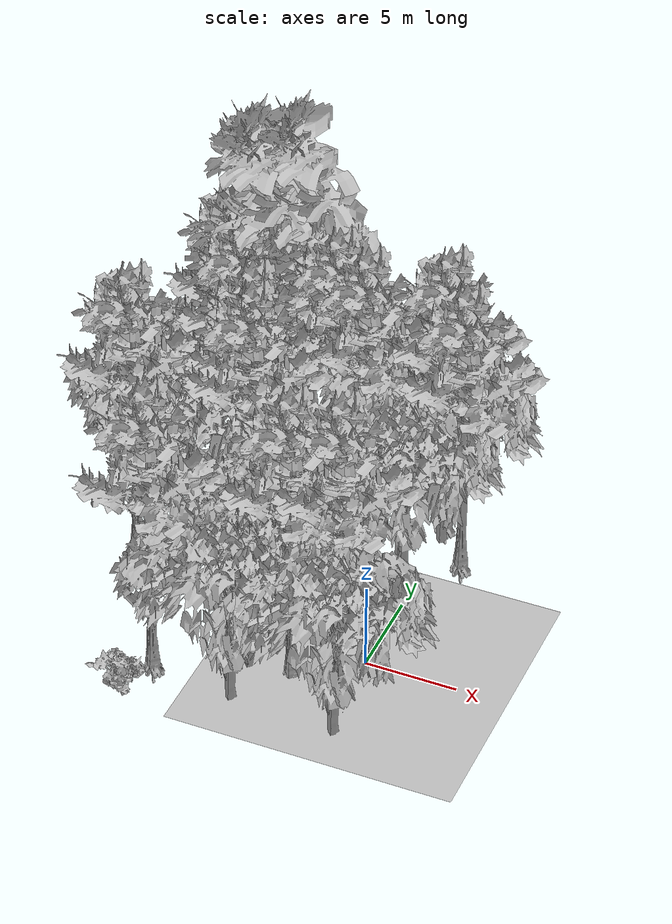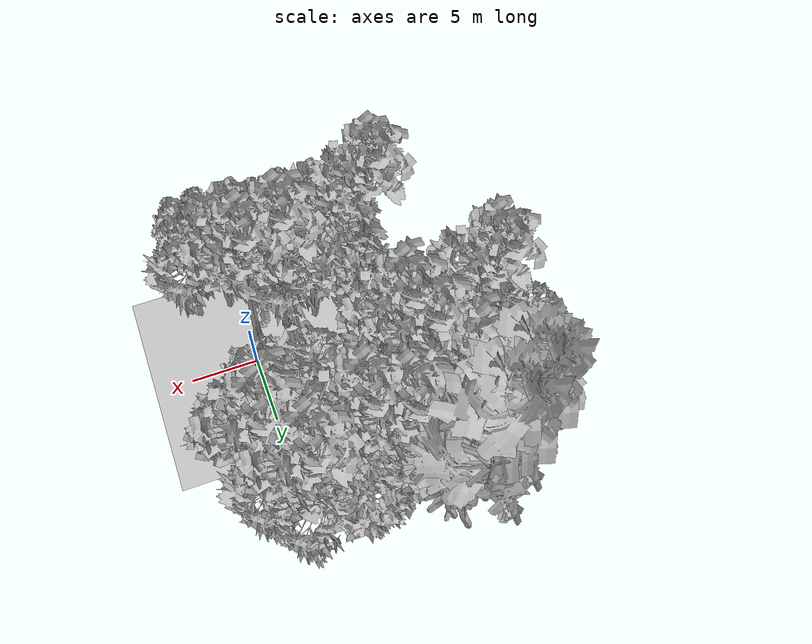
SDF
<sdf version="1.7">
 <world name="default">
  <model name="ground_plane">
   <static>1</static>
   <link name="link">
    <collision name="collision">
     <geometry><plane><normal>0 0 1</normal><size>70 70</size></plane></geometry>
     <surface><contact><ode><min_depth>0.01</min_depth><max_vel>0</max_vel></ode></contact></surface>
    </collision>
    <visual name="grass">
     <cast_shadows>0</cast_shadows>
     <geometry>
      <mesh>
       <scale>0.29000000000000004 0.29000000000000004 0.1</scale>
       <uri>file://grass_plane/meshes/grass_plane.dae</uri>
      </mesh>
     </geometry>
    </visual>
   </link>
  </model>
  <model name="Tree 7">
   <static>1</static>
   <pose>-9.887393055710618 14.658670685171025 0 1.57079 -0 0</pose>
   <link name="link">
    <collision name="collision">
     <geometry><mesh><scale>5 5 5</scale><uri>model://tree_4/meshes/tree_4.obj</uri></mesh></geometry>
    </collision>
    <visual name="visual">
     <geometry><mesh><scale>5 5 5</scale><uri>model://tree_4/meshes/tree_4.obj</uri></mesh></geometry>
    </visual>
   </link>
  </model>
  <model name="Tree 23">
   <static>1</static>
   <pose>-10.006361388430044 -4.478906828208441 0 1.57079 -0 0</pose>
   <link name="link">
    <collision name="collision">
     <geometry><mesh><scale>5 5 5</scale><uri>model://tree_9/meshes/tree_9.obj</uri></mesh></geometry>
    </collision>
    <visual name="visual">
     <geometry><mesh><scale>5 5 5</scale><uri>model://tree_9/meshes/tree_9.obj</uri></mesh></geometry>
    </visual>
   </link>
  </model>
  <model name="Tree 42">
   <static>1</static>
   <pose>-9.30767338521564 6.881466201906882 0 1.57079 -0 0</pose>
   <link name="link">
    <collision name="collision">
     <geometry><mesh><scale>5 5 5</scale><uri>model://tree_9/meshes/tree_9.obj</uri></mesh></geometry>
    </collision>
    <visual name="visual">
     <geometry><mesh><scale>5 5 5</scale><uri>model://tree_9/meshes/tree_9.obj</uri></mesh></geometry>
    </visual>
   </link>
  </model>
  <model name="Tree 52">
   <static>1</static>
   <pose>1.5987458219797048 9.2771937078384 0 1.57079 -0 0</pose>
   <link name="link">
    <collision name="collision">
     <geometry><mesh><scale>5 5 5</scale><uri>model://tree_9/meshes/tree_9.obj</uri></mesh></geometry>
    </collision>
    <visual name="visual">
     <geometry><mesh><scale>5 5 5</scale><uri>model://tree_9/meshes/tree_9.obj</uri></mesh></geometry>
    </visual>
   </link>
  </model>
  <model name="Tree 57">
   <static>1</static>
   <pose>-5.625844707846962 -2.4422319020499117 0 1.57079 -0 0</pose>
   <link name="link">
    <collision name="collision">
     <geometry><mesh><scale>5 5 5</scale><uri>model://tree_2/meshes/tree_2.obj</uri></mesh></geometry>
    </collision>
    <visual name="visual">
     <geometry><mesh><scale>5 5 5</scale><uri>model://tree_2/meshes/tree_2.obj</uri></mesh></geometry>
    </visual>
   </link>
  </model>
  <model name="Tree 58">
   <static>1</static>
   <pose>-0.27144623589579453 10.844339724185978 0 1.57079 -0 0</pose>
   <link name="link">
    <collision name="collision">
     <geometry><mesh><scale>5 5 5</scale><uri>model://tree_2/meshes/tree_2.obj</uri></mesh></geometry>
    </collision>
    <visual name="visual">
     <geometry><mesh><scale>5 5 5</scale><uri>model://tree_2/meshes/tree_2.obj</uri></mesh></geometry>
    </visual>
   </link>
  </model>
  <model name="Tree 78">
   <static>1</static>
   <pose>-0.3887464680318118 12.021683993371092 0 1.57079 -0 0</pose>
   <link name="link">
    <collision name="collision">
     <geometry><mesh><scale>5 5 5</scale><uri>model://tree_9/meshes/tree_9.obj</uri></mesh></geometry>
    </collision>
    <visual name="visual">
     <geometry><mesh><scale>5 5 5</scale><uri>model://tree_9/meshes/tree_9.obj</uri></mesh></geometry>
    </visual>
   </link>
  </model>
  <model name="Tree 79">
   <static>1</static>
   <pose>-5.473502184002218 -5.13792144022084 0 1.57079 -0 0</pose>
   <link name="link">
    <collision name="collision">
     <geometry><mesh><scale>5 5 5</scale><uri>model://tree_2/meshes/tree_2.obj</uri></mesh></geometry>
    </collision>
    <visual name="visual">
     <geometry><mesh><scale>5 5 5</scale><uri>model://tree_2/meshes/tree_2.obj</uri></mesh></geometry>
    </visual>
   </link>
  </model>
  <model name="Tree 80">
   <static>1</static>
   <pose>-11.781049813239552 13.334174932168771 0 1.57079 -0 0</pose>
   <link name="link">
    <collision name="collision">
     <geometry><mesh><scale>5 5 5</scale><uri>model://tree_4/meshes/tree_4.obj</uri></mesh></geometry>
    </collision>
    <visual name="visual">
     <geometry><mesh><scale>5 5 5</scale><uri>model://tree_4/meshes/tree_4.obj</uri></mesh></geometry>
    </visual>
   </link>
  </model>
  <model name="Tree 144">
   <static>1</static>
   <pose>-2.131887502933129 12.946472649146209 0 1.57079 -0 0</pose>
   <link name="link">
    <collision name="collision">
     <geometry><mesh><scale>5 5 5</scale><uri>model://tree_2/meshes/tree_2.obj</uri></mesh></geometry>
    </collision>
    <visual name="visual">
     <geometry><mesh><scale>5 5 5</scale><uri>model://tree_2/meshes/tree_2.obj</uri></mesh></geometry>
    </visual>
   </link>
  </model>
  <model name="Tree 152">
   <static>1</static>
   <pose>-14.67042618502676 8.089378053699747 0 1.57079 -0 0</pose>
   <link name="link">
    <collision name="collision">
     <geometry><mesh><scale>5 5 5</scale><uri>model://tree_2/meshes/tree_2.obj</uri></mesh></geometry>
    </collision>
    <visual name="visual">
     <geometry><mesh><scale>5 5 5</scale><uri>model://tree_2/meshes/tree_2.obj</uri></mesh></geometry>
    </visual>
   </link>
  </model>
  <model name="Tree 155">
   <static>1</static>
   <pose>-8.572450674205527 5.162049316400633 0 1.57079 -0 0</pose>
   <link name="link">
    <collision name="collision">
     <geometry><mesh><scale>5 5 5</scale><uri>model://tree_9/meshes/tree_9.obj</uri></mesh></geometry>
    </collision>
    <visual name="visual">
     <geometry><mesh><scale>5 5 5</scale><uri>model://tree_9/meshes/tree_9.obj</uri></mesh></geometry>
    </visual>
   </link>
  </model>
  <model name="Tree 157">
   <static>1</static>
   <pose>-0.6896306640671668 -1.612994610036509 0 1.57079 -0 0</pose>
   <link name="link">
    <collision name="collision">
     <geometry><mesh><scale>5 5 5</scale><uri>model://tree_9/meshes/tree_9.obj</uri></mesh></geometry>
    </collision>
    <visual name="visual">
     <geometry><mesh><scale>5 5 5</scale><uri>model://tree_9/meshes/tree_9.obj</uri></mesh></geometry>
    </visual>
   </link>
  </model>
  <model name="Tree 164">
   <static>1</static>
   <pose>-0.9858027306029982 7.020946267443506 0 1.57079 -0 0</pose>
   <link name="link">
    <collision name="collision">
     <geometry><mesh><scale>5 5 5</scale><uri>model://tree_2/meshes/tree_2.obj</uri></mesh></geometry>
    </collision>
    <visual name="visual">
     <geometry><mesh><scale>5 5 5</scale><uri>model://tree_2/meshes/tree_2.obj</uri></mesh></geometry>
    </visual>
   </link>
  </model>
  <model name="Tree 167">
   <static>1</static>
   <pose>-4.274373461721087 10.282518293844994 0 1.57079 -0 0</pose>
   <link name="link">
    <collision name="collision">
     <geometry><mesh><scale>5 5 5</scale><uri>model://tree_9/meshes/tree_9.obj</uri></mesh></geometry>
    </collision>
    <visual name="visual">
     <geometry><mesh><scale>5 5 5</scale><uri>model://tree_9/meshes/tree_9.obj</uri></mesh></geometry>
    </visual>
   </link>
  </model>
  <model name="Tree 171">
   <static>1</static>
   <pose>-11.342449695837733 10.224324605597928 0 1.57079 -0 0</pose>
   <link name="link">
    <collision name="collision">
     <geometry><mesh><scale>5 5 5</scale><uri>model://tree_9/meshes/tree_9.obj</uri></mesh></geometry>
    </collision>
    <visual name="visual">
     <geometry><mesh><scale>5 5 5</scale><uri>model://tree_9/meshes/tree_9.obj</uri></mesh></geometry>
    </visual>
   </link>
  </model>
  <model name="Tree 188">
   <static>1</static>
   <pose>0.352700688756336 -5.470623270396558 0 1.57079 -0 0</pose>
   <link name="link">
    <collision name="collision">
     <geometry><mesh><scale>5 5 5</scale><uri>model://tree_2/meshes/tree_2.obj</uri></mesh></geometry>
    </collision>
    <visual name="visual">
     <geometry><mesh><scale>5 5 5</scale><uri>model://tree_2/meshes/tree_2.obj</uri></mesh></geometry>
    </visual>
   </link>
  </model>
  <model name="Tree 199">
   <static>1</static>
   <pose>-15.011953042723118 4.13445148524805 0 1.57079 -0 0</pose>
   <link name="link">
    <collision name="collision">
     <geometry><mesh><scale>5 5 5</scale><uri>model://tree_9/meshes/tree_9.obj</uri></mesh></geometry>
    </collision>
    <visual name="visual">
     <geometry><mesh><scale>5 5 5</scale><uri>model://tree_9/meshes/tree_9.obj</uri></mesh></geometry>
    </visual>
   </link>
  </model>
  <model name="Tree 201">
   <static>1</static>
   <pose>-3.181638402064653 -2.2592404118977925 0 1.57079 -0 0</pose>
   <link name="link">
    <collision name="collision">
     <geometry><mesh><scale>5 5 5</scale><uri>model://tree_9/meshes/tree_9.obj</uri></mesh></geometry>
    </collision>
    <visual name="visual">
     <geometry><mesh><scale>5 5 5</scale><uri>model://tree_9/meshes/tree_9.obj</uri></mesh></geometry>
    </visual>
   </link>
  </model>
  <model name="Tree 204">
   <static>1</static>
   <pose>-6.330038506299541 11.326311597176193 0 1.57079 -0 0</pose>
   <link name="link">
    <collision name="collision">
     <geometry><mesh><scale>5 5 5</scale><uri>model://tree_9/meshes/tree_9.obj</uri></mesh></geometry>
    </collision>
    <visual name="visual">
     <geometry><mesh><scale>5 5 5</scale><uri>model://tree_9/meshes/tree_9.obj</uri></mesh></geometry>
    </visual>
   </link>
  </model>
  <model name="Tree 214">
   <static>1</static>
   <pose>-13.110216066586204 12.87402645186846 0 1.57079 -0 0</pose>
   <link name="link">
    <collision name="collision">
     <geometry><mesh><scale>5 5 5</scale><uri>model://tree_9/meshes/tree_9.obj</uri></mesh></geometry>
    </collision>
    <visual name="visual">
     <geometry><mesh><scale>5 5 5</scale><uri>model://tree_9/meshes/tree_9.obj</uri></mesh></geometry>
    </visual>
   </link>
  </model>
  <model name="Tree 236">
   <static>1</static>
   <pose>-12.840084711058108 6.314281136299115 0 1.57079 -0 0</pose>
   <link name="link">
    <collision name="collision">
     <geometry><mesh><scale>5 5 5</scale><uri>model://tree_2/meshes/tree_2.obj</uri></mesh></geometry>
    </collision>
    <visual name="visual">
     <geometry><mesh><scale>5 5 5</scale><uri>model://tree_2/meshes/tree_2.obj</uri></mesh></geometry>
    </visual>
   </link>
  </model>
  <model name="Bush 26">
   <static>1</static>
   <pose>-1.3731205477902506 5.7753069668379595 0 1.57079 -0 0</pose>
   <link name="link">
    <collision name="collision">
     <geometry><mesh><scale>2 2 2</scale><uri>model://bush_2/meshes/bush_2.obj</uri></mesh></geometry>
    </collision>
    <visual name="visual">
     <geometry><mesh><scale>5 5 5</scale><uri>model://bush_2/meshes/bush_2.obj</uri></mesh></geometry>
    </visual>
   </link>
  </model>
  <model name="Bush 29">
   <static>1</static>
   <pose>-11.448834625829232 -5.850804539327164 0 1.57079 -0 0</pose>
   <link name="link">
    <collision name="collision">
     <geometry><mesh><scale>2 2 2</scale><uri>model://bush_2/meshes/bush_2.obj</uri></mesh></geometry>
    </collision>
    <visual name="visual">
     <geometry><mesh><scale>5 5 5</scale><uri>model://bush_2/meshes/bush_2.obj</uri></mesh></geometry>
    </visual>
   </link>
  </model>
  <model name="Bush 41">
   <static>1</static>
   <pose>-6.932708340369317 12.44367033452783 0 1.57079 -0 0</pose>
   <link name="link">
    <collision name="collision">
     <geometry><mesh><scale>2 2 2</scale><uri>model://bush_1/meshes/bush_1.obj</uri></mesh></geometry>
    </collision>
    <visual name="visual">
     <geometry><mesh><scale>5 5 5</scale><uri>model://bush_1/meshes/bush_1.obj</uri></mesh></geometry>
    </visual>
   </link>
  </model>
  <model name="Bush 55">
   <static>1</static>
   <pose>-5.210041305748252 2.993762446535115 0 1.57079 -0 0</pose>
   <link name="link">
    <collision name="collision">
     <geometry><mesh><scale>2 2 2</scale><uri>model://bush_2/meshes/bush_2.obj</uri></mesh></geometry>
    </collision>
    <visual name="visual">
     <geometry><mesh><scale>5 5 5</scale><uri>model://bush_2/meshes/bush_2.obj</uri></mesh></geometry>
    </visual>
   </link>
  </model>
 </world>
</sdf>
